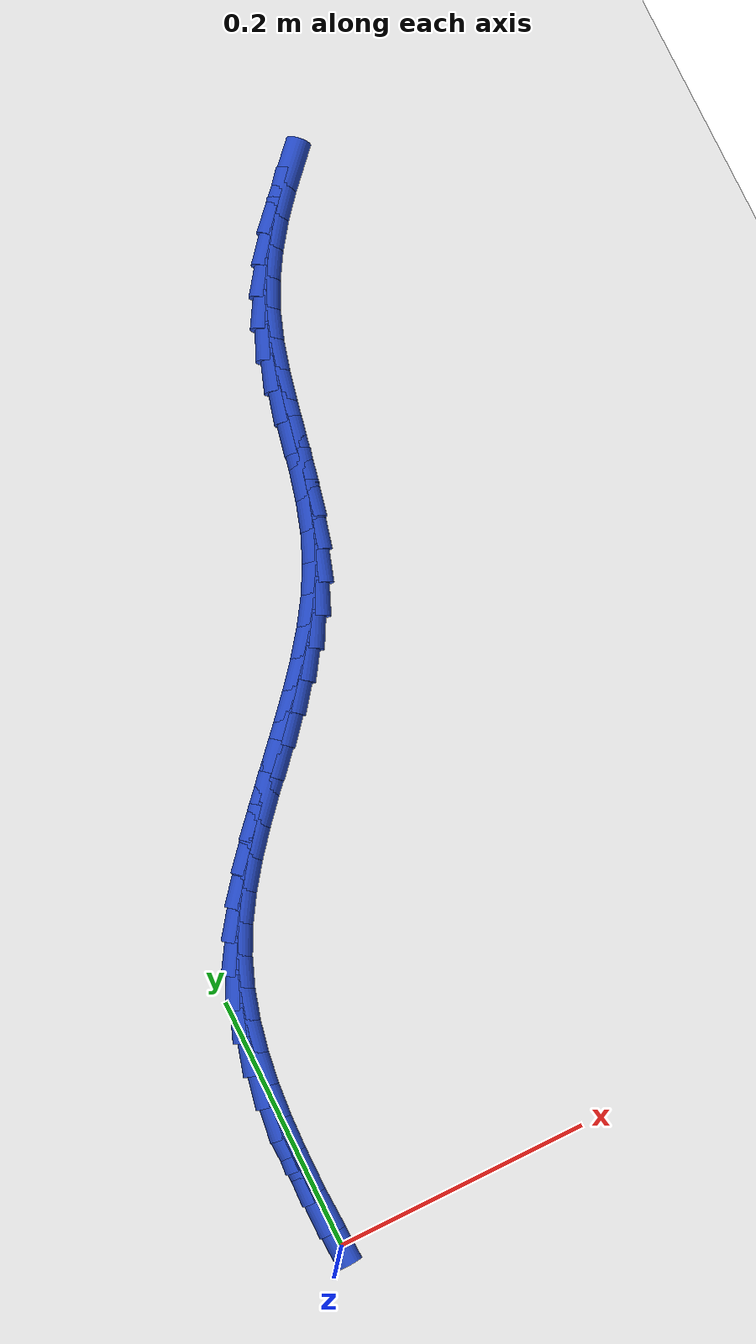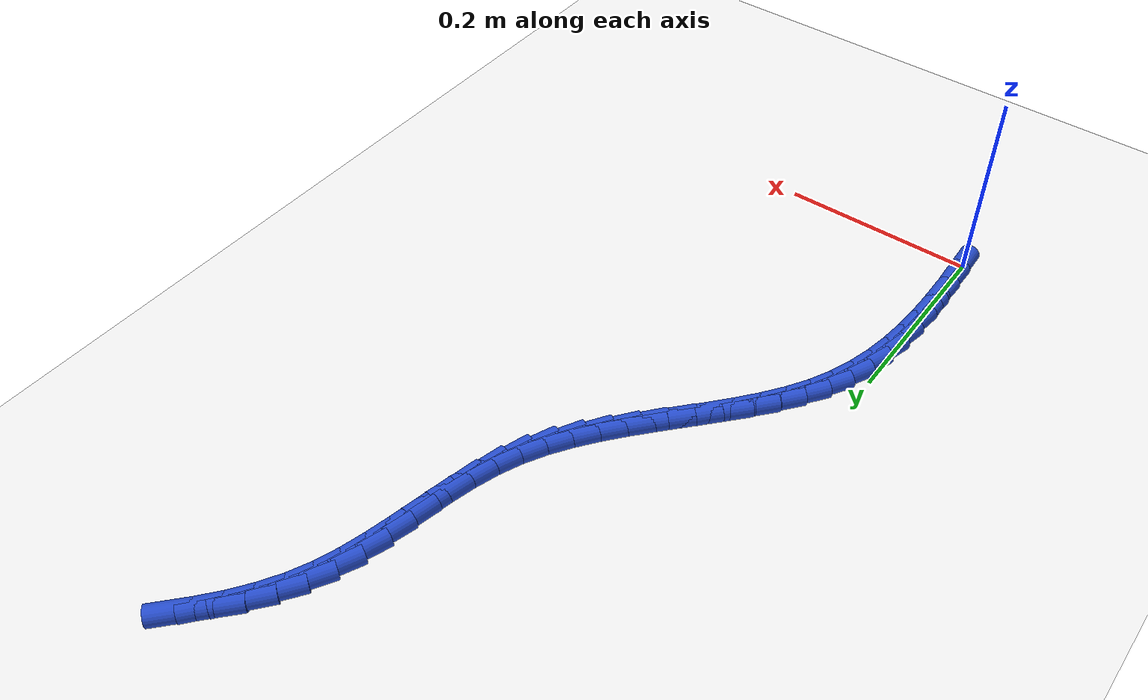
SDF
<sdf version="1.6">
 <world name="default">
  <model name="ground_plane">
   <static>1</static>
   <link name="link">
    <collision name="collision">
     <geometry><plane><normal>0 0 1</normal><size>100 100</size></plane></geometry>
     <surface><friction><ode><mu>100</mu><mu2>50</mu2></ode></friction></surface>
    </collision>
    <visual name="visual">
     <cast_shadows>0</cast_shadows>
     <geometry><plane><normal>0 0 1</normal><size>100 100</size></plane></geometry>
     <material>
      <script><uri>file://media/materials/scripts/gazebo.material</uri><name>Gazebo/WhiteGlow</name></script>
     </material>
    </visual>
   </link>
  </model>
  <model name="line">
   <link name="link_2">
    <pose>-0.0019567881577833793 0.0519786804302538 0.01 0 1.57 -1.568173875574855</pose>
    <collision name="collision">
     <geometry><cylinder><radius>0.01</radius><length>0.08</length></cylinder></geometry>
    </collision>
    <visual name="visual">
     <material>
      <script><name>Gazebo/Blue</name><uri>file://media/materials/scripts/gazebo.material</uri></script>
     </material>
     <geometry><cylinder><radius>0.01</radius><length>0.08</length></cylinder></geometry>
    </visual>
   </link>
   <link name="link_3">
    <pose>-0.0020251028692053895 0.0780285662371162 0.01 0 1.57 1.5381723187275815</pose>
    <collision name="collision">
     <geometry><cylinder><radius>0.01</radius><length>0.08</length></cylinder></geometry>
    </collision>
    <visual name="visual">
     <material>
      <script><name>Gazebo/Blue</name><uri>file://media/materials/scripts/gazebo.material</uri></script>
     </material>
     <geometry><cylinder><radius>0.01</radius><length>0.08</length></cylinder></geometry>
    </visual>
   </link>
   <link name="link_4">
    <pose>-0.0011800377717534442 0.1039225418090228 0.01 0 1.57 1.4932509529633828</pose>
    <collision name="collision">
     <geometry><cylinder><radius>0.01</radius><length>0.08</length></cylinder></geometry>
    </collision>
    <visual name="visual">
     <material>
      <script><name>Gazebo/Blue</name><uri>file://media/materials/scripts/gazebo.material</uri></script>
     </material>
     <geometry><cylinder><radius>0.01</radius><length>0.08</length></cylinder></geometry>
    </visual>
   </link>
   <link name="link_5">
    <pose>0.000808402307493088 0.12951340167388908 0.01 0 1.57 1.4378642211099277</pose>
    <collision name="collision">
     <geometry><cylinder><radius>0.01</radius><length>0.08</length></cylinder></geometry>
    </collision>
    <visual name="visual">
     <material>
      <script><name>Gazebo/Blue</name><uri>file://media/materials/scripts/gazebo.material</uri></script>
     </material>
     <geometry><cylinder><radius>0.01</radius><length>0.08</length></cylinder></geometry>
    </visual>
   </link>
   <link name="link_6">
    <pose>0.0041702125414548406 0.15465394035963057 0.01 0 1.57 1.3711853472361413</pose>
    <collision name="collision">
     <geometry><cylinder><radius>0.01</radius><length>0.08</length></cylinder></geometry>
    </collision>
    <visual name="visual">
     <material>
      <script><name>Gazebo/Blue</name><uri>file://media/materials/scripts/gazebo.material</uri></script>
     </material>
     <geometry><cylinder><radius>0.01</radius><length>0.08</length></cylinder></geometry>
    </visual>
   </link>
   <link name="link_7">
    <pose>0.009135388103052438 0.1791969523941626 0.01 0 1.57 1.2925344477726048</pose>
    <collision name="collision">
     <geometry><cylinder><radius>0.01</radius><length>0.08</length></cylinder></geometry>
    </collision>
    <visual name="visual">
     <material>
      <script><name>Gazebo/Blue</name><uri>file://media/materials/scripts/gazebo.material</uri></script>
     </material>
     <geometry><cylinder><radius>0.01</radius><length>0.08</length></cylinder></geometry>
    </visual>
   </link>
   <link name="link_8">
    <pose>0.015933924165206503 0.20299523230540073 0.01 0 1.57 1.2016555358553467</pose>
    <collision name="collision">
     <geometry><cylinder><radius>0.01</radius><length>0.08</length></cylinder></geometry>
    </collision>
    <visual name="visual">
     <material>
      <script><name>Gazebo/Blue</name><uri>file://media/materials/scripts/gazebo.material</uri></script>
     </material>
     <geometry><cylinder><radius>0.01</radius><length>0.08</length></cylinder></geometry>
    </visual>
   </link>
   <link name="link_9">
    <pose>0.02479581590083768 0.2259015746212603 0.01 0 1.57 1.1014199126125375</pose>
    <collision name="collision">
     <geometry><cylinder><radius>0.01</radius><length>0.08</length></cylinder></geometry>
    </collision>
    <visual name="visual">
     <material>
      <script><name>Gazebo/Blue</name><uri>file://media/materials/scripts/gazebo.material</uri></script>
     </material>
     <geometry><cylinder><radius>0.01</radius><length>0.08</length></cylinder></geometry>
    </visual>
   </link>
   <link name="link_10">
    <pose>0.03590022369805859 0.24779591496566802 0.01 0 1.57 1.011174494806404</pose>
    <collision name="collision">
     <geometry><cylinder><radius>0.01</radius><length>0.08</length></cylinder></geometry>
    </collision>
    <visual name="visual">
     <material>
      <script><name>Gazebo/Blue</name><uri>file://media/materials/scripts/gazebo.material</uri></script>
     </material>
     <geometry><cylinder><radius>0.01</radius><length>0.08</length></cylinder></geometry>
    </visual>
   </link>
   <link name="link_11">
    <pose>0.049036543903759285 0.26876628708482003 0.01 0 1.57 0.9399334317003115</pose>
    <collision name="collision">
     <geometry><cylinder><radius>0.01</radius><length>0.08</length></cylinder></geometry>
    </collision>
    <visual name="visual">
     <material>
      <script><name>Gazebo/Blue</name><uri>file://media/materials/scripts/gazebo.material</uri></script>
     </material>
     <geometry><cylinder><radius>0.01</radius><length>0.08</length></cylinder></geometry>
    </visual>
   </link>
   <link name="link_12">
    <pose>0.0638138206214321 0.2889970162224054 0.01 0 1.57 0.8872686179507671</pose>
    <collision name="collision">
     <geometry><cylinder><radius>0.01</radius><length>0.08</length></cylinder></geometry>
    </collision>
    <visual name="visual">
     <material>
      <script><name>Gazebo/Blue</name><uri>file://media/materials/scripts/gazebo.material</uri></script>
     </material>
     <geometry><cylinder><radius>0.01</radius><length>0.08</length></cylinder></geometry>
    </visual>
   </link>
   <link name="link_13">
    <pose>0.07984011867928323 0.30867295046497906 0.01 0 1.57 0.8522408303125061</pose>
    <collision name="collision">
     <geometry><cylinder><radius>0.01</radius><length>0.08</length></cylinder></geometry>
    </collision>
    <visual name="visual">
     <material>
      <script><name>Gazebo/Blue</name><uri>file://media/materials/scripts/gazebo.material</uri></script>
     </material>
     <geometry><cylinder><radius>0.01</radius><length>0.08</length></cylinder></geometry>
    </visual>
   </link>
   <link name="link_14">
    <pose>0.09672350290551884 0.3279789378990955 0.01 0 1.57 0.8339582983865975</pose>
    <collision name="collision">
     <geometry><cylinder><radius>0.01</radius><length>0.08</length></cylinder></geometry>
    </collision>
    <visual name="visual">
     <material>
      <script><name>Gazebo/Blue</name><uri>file://media/materials/scripts/gazebo.material</uri></script>
     </material>
     <geometry><cylinder><radius>0.01</radius><length>0.08</length></cylinder></geometry>
    </visual>
   </link>
   <link name="link_15">
    <pose>0.11407203812834507 0.34709982661130934 0.01 0 1.57 0.8318555698062247</pose>
    <collision name="collision">
     <geometry><cylinder><radius>0.01</radius><length>0.08</length></cylinder></geometry>
    </collision>
    <visual name="visual">
     <material>
      <script><name>Gazebo/Blue</name><uri>file://media/materials/scripts/gazebo.material</uri></script>
     </material>
     <geometry><cylinder><radius>0.01</radius><length>0.08</length></cylinder></geometry>
    </visual>
   </link>
   <link name="link_16">
    <pose>0.13149378917596807 0.3662204646881755 0.01 0 1.57 0.8458109271327214</pose>
    <collision name="collision">
     <geometry><cylinder><radius>0.01</radius><length>0.08</length></cylinder></geometry>
    </collision>
    <visual name="visual">
     <material>
      <script><name>Gazebo/Blue</name><uri>file://media/materials/scripts/gazebo.material</uri></script>
     </material>
     <geometry><cylinder><radius>0.01</radius><length>0.08</length></cylinder></geometry>
    </visual>
   </link>
   <link name="link_17">
    <pose>0.1485968208765941 0.38552570021624855 0.01 0 1.57 0.8761537570166438</pose>
    <collision name="collision">
     <geometry><cylinder><radius>0.01</radius><length>0.08</length></cylinder></geometry>
    </collision>
    <visual name="visual">
     <material>
      <script><name>Gazebo/Blue</name><uri>file://media/materials/scripts/gazebo.material</uri></script>
     </material>
     <geometry><cylinder><radius>0.01</radius><length>0.08</length></cylinder></geometry>
    </visual>
   </link>
   <link name="link_18">
    <pose>0.16498919805842915 0.405200381282083 0.01 0 1.57 0.9235706233107076</pose>
    <collision name="collision">
     <geometry><cylinder><radius>0.01</radius><length>0.08</length></cylinder></geometry>
    </collision>
    <visual name="visual">
     <material>
      <script><name>Gazebo/Blue</name><uri>file://media/materials/scripts/gazebo.material</uri></script>
     </material>
     <geometry><cylinder><radius>0.01</radius><length>0.08</length></cylinder></geometry>
    </visual>
   </link>
   <link name="link_19">
    <pose>0.1802789855496796 0.4254293559722342 0.01 0 1.57 0.988876256986188</pose>
    <collision name="collision">
     <geometry><cylinder><radius>0.01</radius><length>0.08</length></cylinder></geometry>
    </collision>
    <visual name="visual">
     <material>
      <script><name>Gazebo/Blue</name><uri>file://media/materials/scripts/gazebo.material</uri></script>
     </material>
     <geometry><cylinder><radius>0.01</radius><length>0.08</length></cylinder></geometry>
    </visual>
   </link>
   <link name="link_20">
    <pose>0.1940742481785515 0.4463974723732562 0.01 0 1.57 1.0725890455710496</pose>
    <collision name="collision">
     <geometry><cylinder><radius>0.01</radius><length>0.08</length></cylinder></geometry>
    </collision>
    <visual name="visual">
     <material>
      <script><name>Gazebo/Blue</name><uri>file://media/materials/scripts/gazebo.material</uri></script>
     </material>
     <geometry><cylinder><radius>0.01</radius><length>0.08</length></cylinder></geometry>
    </visual>
   </link>
   <link name="link_21">
    <pose>0.20598305077325105 0.46828957857170406 0.01 0 1.57 1.1731129228180945</pose>
    <collision name="collision">
     <geometry><cylinder><radius>0.01</radius><length>0.08</length></cylinder></geometry>
    </collision>
    <visual name="visual">
     <material>
      <script><name>Gazebo/Blue</name><uri>file://media/materials/scripts/gazebo.material</uri></script>
     </material>
     <geometry><cylinder><radius>0.01</radius><length>0.08</length></cylinder></geometry>
    </visual>
   </link>
   <link name="link_22">
    <pose>0.21563951747753632 0.4912775979634214 0.01 0 1.57 1.2659504119125033</pose>
    <collision name="collision">
     <geometry><cylinder><radius>0.01</radius><length>0.08</length></cylinder></geometry>
    </collision>
    <visual name="visual">
     <material>
      <script><name>Gazebo/Blue</name><uri>file://media/materials/scripts/gazebo.material</uri></script>
     </material>
     <geometry><cylinder><radius>0.01</radius><length>0.08</length></cylinder></geometry>
    </visual>
   </link>
   <link name="link_23">
    <pose>0.22319153853211807 0.515278640348412 0.01 0 1.57 1.3299655675442235</pose>
    <collision name="collision">
     <geometry><cylinder><radius>0.01</radius><length>0.08</length></cylinder></geometry>
    </collision>
    <visual name="visual">
     <material>
      <script><name>Gazebo/Blue</name><uri>file://media/materials/scripts/gazebo.material</uri></script>
     </material>
     <geometry><cylinder><radius>0.01</radius><length>0.08</length></cylinder></geometry>
    </visual>
   </link>
   <link name="link_24">
    <pose>0.22925728544944848 0.5399765691863327 0.01 0 1.57 1.3657047859916154</pose>
    <collision name="collision">
     <geometry><cylinder><radius>0.01</radius><length>0.08</length></cylinder></geometry>
    </collision>
    <visual name="visual">
     <material>
      <script><name>Gazebo/Blue</name><uri>file://media/materials/scripts/gazebo.material</uri></script>
     </material>
     <geometry><cylinder><radius>0.01</radius><length>0.08</length></cylinder></geometry>
    </visual>
   </link>
   <link name="link_25">
    <pose>0.2344722707640014 0.5650466472755613 0.01 0 1.57 1.3743105719394462</pose>
    <collision name="collision">
     <geometry><cylinder><radius>0.01</radius><length>0.08</length></cylinder></geometry>
    </collision>
    <visual name="visual">
     <material>
      <script><name>Gazebo/Blue</name><uri>file://media/materials/scripts/gazebo.material</uri></script>
     </material>
     <geometry><cylinder><radius>0.01</radius><length>0.08</length></cylinder></geometry>
    </visual>
   </link>
   <link name="link_26">
    <pose>0.2394720070102504 0.5901641374144748 0.01 0 1.57 1.355968346934013</pose>
    <collision name="collision">
     <geometry><cylinder><radius>0.01</radius><length>0.08</length></cylinder></geometry>
    </collision>
    <visual name="visual">
     <material>
      <script><name>Gazebo/Blue</name><uri>file://media/materials/scripts/gazebo.material</uri></script>
     </material>
     <geometry><cylinder><radius>0.01</radius><length>0.08</length></cylinder></geometry>
    </visual>
   </link>
   <link name="link_27">
    <pose>0.24489200672266925 0.6150043024014505 0.01 0 1.57 1.3097209256946942</pose>
    <collision name="collision">
     <geometry><cylinder><radius>0.01</radius><length>0.08</length></cylinder></geometry>
    </collision>
    <visual name="visual">
     <material>
      <script><name>Gazebo/Blue</name><uri>file://media/materials/scripts/gazebo.material</uri></script>
     </material>
     <geometry><cylinder><radius>0.01</radius><length>0.08</length></cylinder></geometry>
    </visual>
   </link>
   <link name="link_28">
    <pose>0.2513677824357316 0.6392424050348656 0.01 0 1.57 1.2338116778294277</pose>
    <collision name="collision">
     <geometry><cylinder><radius>0.01</radius><length>0.08</length></cylinder></geometry>
    </collision>
    <visual name="visual">
     <material>
      <script><name>Gazebo/Blue</name><uri>file://media/materials/scripts/gazebo.material</uri></script>
     </material>
     <geometry><cylinder><radius>0.01</radius><length>0.08</length></cylinder></geometry>
    </visual>
   </link>
   <link name="link_29">
    <pose>0.25953484668391136 0.6625537081130977 0.01 0 1.57 1.1310199491851476</pose>
    <collision name="collision">
     <geometry><cylinder><radius>0.01</radius><length>0.08</length></cylinder></geometry>
    </collision>
    <visual name="visual">
     <material>
      <script><name>Gazebo/Blue</name><uri>file://media/materials/scripts/gazebo.material</uri></script>
     </material>
     <geometry><cylinder><radius>0.01</radius><length>0.08</length></cylinder></geometry>
    </visual>
   </link>
   <link name="link_30">
    <pose>0.2699370110502156 0.6846621064124442 0.01 0 1.57 1.0303191824166575</pose>
    <collision name="collision">
     <geometry><cylinder><radius>0.01</radius><length>0.08</length></cylinder></geometry>
    </collision>
    <visual name="visual">
     <material>
      <script><name>Gazebo/Blue</name><uri>file://media/materials/scripts/gazebo.material</uri></script>
     </material>
     <geometry><cylinder><radius>0.01</radius><length>0.08</length></cylinder></geometry>
    </visual>
   </link>
   <link name="link_31">
    <pose>0.2825098327904892 0.7056140716349091 0.01 0 1.57 0.9451063912808295</pose>
    <collision name="collision">
     <geometry><cylinder><radius>0.01</radius><length>0.08</length></cylinder></geometry>
    </collision>
    <visual name="visual">
     <material>
      <script><name>Gazebo/Blue</name><uri>file://media/materials/scripts/gazebo.material</uri></script>
     </material>
     <geometry><cylinder><radius>0.01</radius><length>0.08</length></cylinder></geometry>
    </visual>
   </link>
   <link name="link_32">
    <pose>0.29694124236754105 0.7255873999730142 0.01 0 1.57 0.8760637971794023</pose>
    <collision name="collision">
     <geometry><cylinder><radius>0.01</radius><length>0.08</length></cylinder></geometry>
    </collision>
    <visual name="visual">
     <material>
      <script><name>Gazebo/Blue</name><uri>file://media/materials/scripts/gazebo.material</uri></script>
     </material>
     <geometry><cylinder><radius>0.01</radius><length>0.08</length></cylinder></geometry>
    </visual>
   </link>
   <link name="link_33">
    <pose>0.3129184479354378 0.7447602706829499 0.01 0 1.57 0.8228625204332671</pose>
    <collision name="collision">
     <geometry><cylinder><radius>0.01</radius><length>0.08</length></cylinder></geometry>
    </collision>
    <visual name="visual">
     <material>
      <script><name>Gazebo/Blue</name><uri>file://media/materials/scripts/gazebo.material</uri></script>
     </material>
     <geometry><cylinder><radius>0.01</radius><length>0.08</length></cylinder></geometry>
    </visual>
   </link>
   <link name="link_271">
    <pose>-0.0012498123177172242 0.025951106446987015 0.01 0 1.57 -1.5302957354552402</pose>
    <collision name="collision">
     <geometry><cylinder><radius>0.01</radius><length>0.08</length></cylinder></geometry>
    </collision>
    <visual name="visual">
     <material>
      <script><name>Gazebo/Blue</name><uri>file://media/materials/scripts/gazebo.material</uri></script>
     </material>
     <geometry><cylinder><radius>0.01</radius><length>0.08</length></cylinder></geometry>
    </visual>
   </link>
   <link name="link_272">
    <pose>-0.002314576216256658 0.052226813121984614 0.01 0 1.57 -1.5265075307735003</pose>
    <collision name="collision">
     <geometry><cylinder><radius>0.01</radius><length>0.08</length></cylinder></geometry>
    </collision>
    <visual name="visual">
     <material>
      <script><name>Gazebo/Blue</name><uri>file://media/materials/scripts/gazebo.material</uri></script>
     </material>
     <geometry><cylinder><radius>0.01</radius><length>0.08</length></cylinder></geometry>
    </visual>
   </link>
  </model>
 </world>
</sdf>
